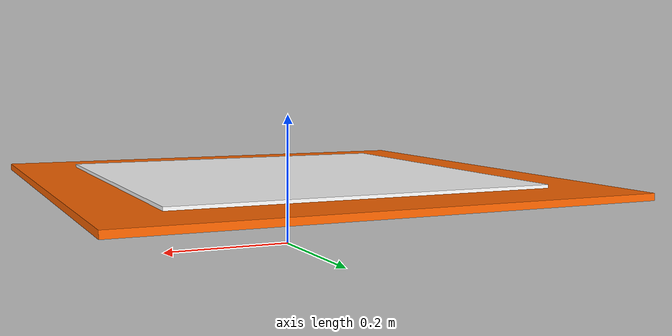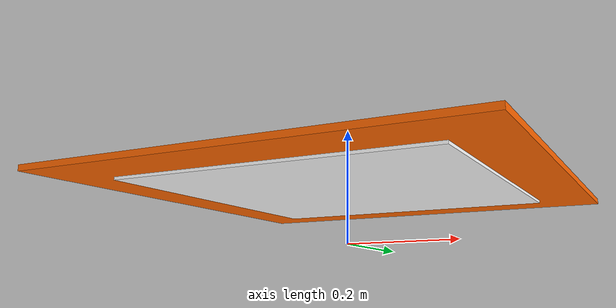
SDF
<?xml version="1.0" ?>
<sdf version="1.9">
  <model name="gva_platform">
    <static>false</static>
    <self_collide>true</self_collide>

    <link name="platform_link">
      <pose>0 0 0.1 0 0 0</pose>

      <gravity>false</gravity>

      <inertial>
        <mass>50000</mass> <inertia>
          <ixx>10000</ixx><ixy>0</ixy><ixz>0</ixz>
          <iyy>10000</iyy><iyz>0</iyz><izz>10000</izz>
        </inertia>
      </inertial>
      <visual name="orange_base">
          <geometry>
            <box><size>0.74 0.75 0.01</size></box>
          </geometry>
          <material>
            <ambient>1.0 0.4 0.0 1.0</ambient>
            <diffuse>1.0 0.4 0.0 1.0</diffuse>
          </material>
      </visual>

      <visual name="platform_visual">
        <geometry>
          <box>
            <size>0.55 0.55 0.02</size>
          </box>
        </geometry>
        <material>
          <ambient>1 1 1 1</ambient>
          <diffuse>1 1 1 1</diffuse>
          <specular>0 0 0 1</specular>
          <pbr>
            <metal>
              <albedo_map>nested_paper_target.png</albedo_map>
            </metal>
          </pbr>
        </material>
      </visual>

      <collision name="platform_collision">
        <geometry>
          <box>
            <size>0.74 0.74 0.02</size>
          </box>
        </geometry>
        <surface>
          <friction>
            <ode>
              <mu>100</mu>
              <mu2>50</mu2>
            </ode>
          </friction>
        </surface>
      </collision>
    </link>

    <plugin
      filename="gz-sim-velocity-control-system"
      name="gz::sim::systems::VelocityControl">
      <link_name>platform_link</link_name>
      <topic>/model/gva_platform/cmd_vel</topic>
    </plugin>
  </model>
</sdf>
